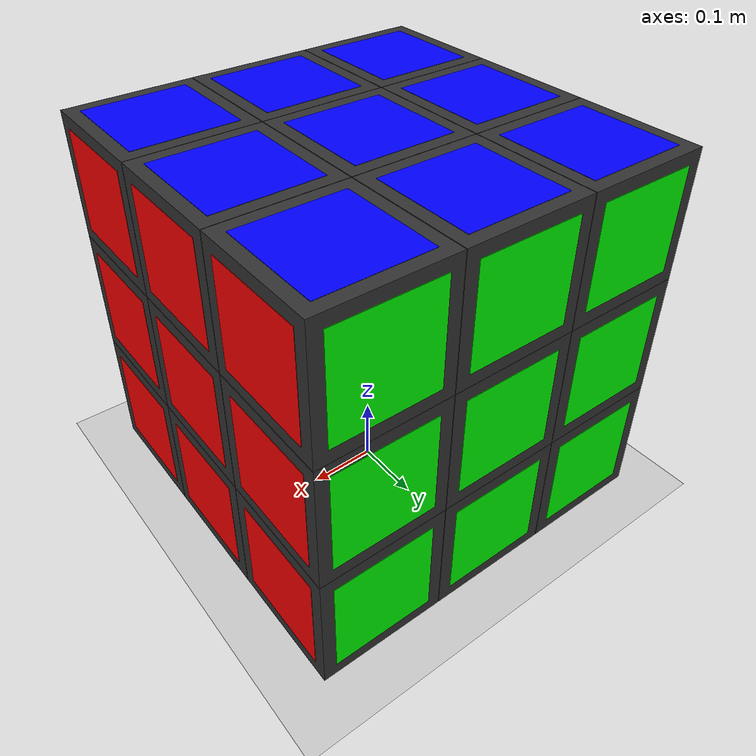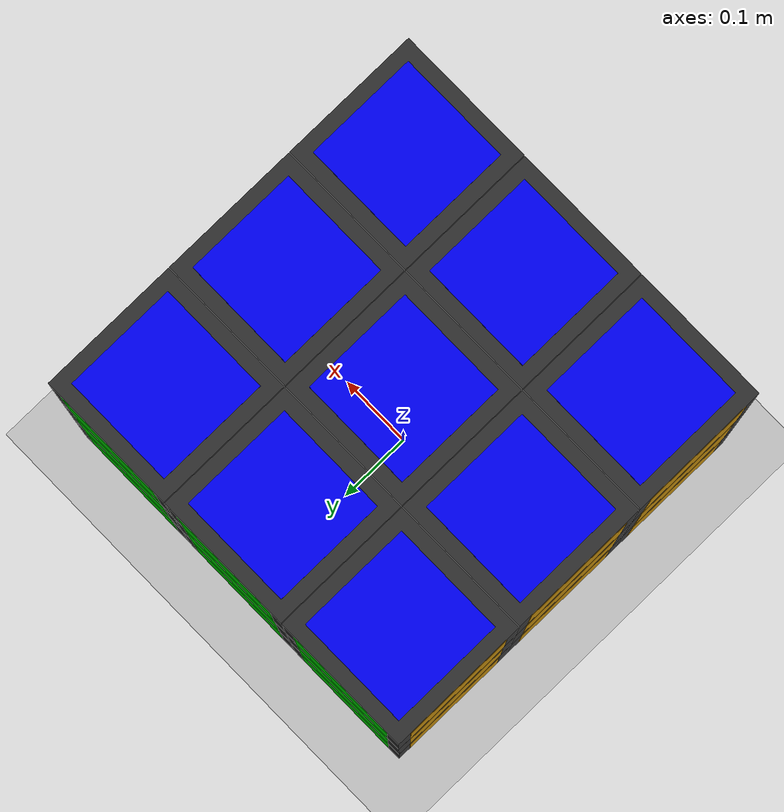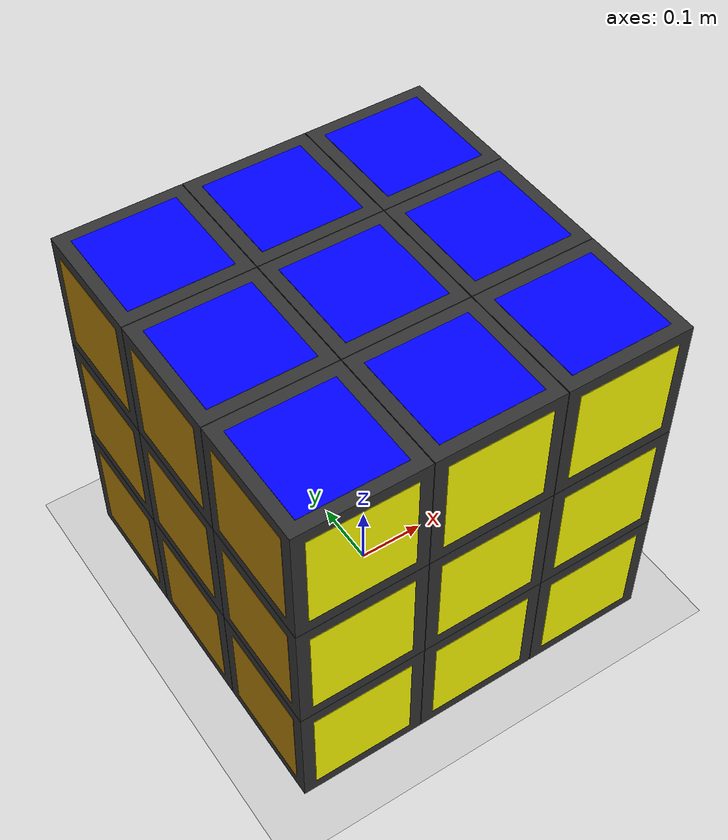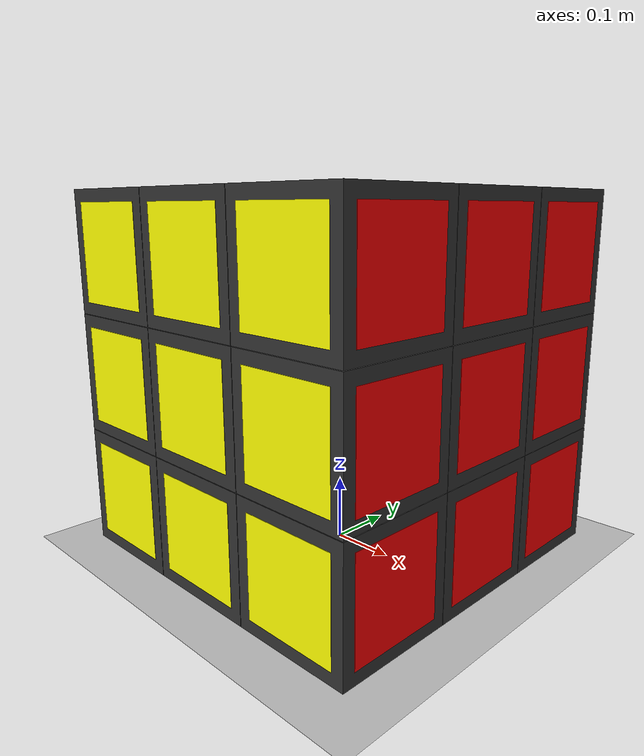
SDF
<?xml version="1.0" ?>
<sdf version="1.6">
  <world name="default">

    <gui>
      <plugin name="puzzle_gui_plugin" filename="libPuzzleGUIPlugin.so"/>
    </gui>

    <!-- A global light source -->
    <include>
      <uri>model://sun</uri>
    </include>

    <!-- A ground plane -->
    <include>
      <uri>model://ground_plane</uri>
    </include>

    <!-- The puzzle -->
    <include>
      <uri>model://puzzle_ball_joints</uri>
    </include>
  </world>
</sdf>

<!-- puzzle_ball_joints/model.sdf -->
<sdf version="1.5">
  <model name="puzzle_ball_joints">
    <pose>0 0 0.27949999999999997 0 0 0</pose>

    <link name="cubie_1_1_1">
      <pose>0.186 0.186 0.186 0 0 0</pose>
      <self_collide>1</self_collide>
      <inertial>
        <mass>7.439659375</mass>
        <inertia>
          <ixx>0.04243705701822916</ixx>
          <iyy>0.04243705701822916</iyy>
          <izz>0.04243705701822916</izz>
          <ixy>0</ixy>
          <ixz>0</ixz>
          <iyz>0</iyz>
        </inertia>
      </inertial>
      <collision name="collision">
        <geometry>
          <box>
            <size>0.185 0.185 0.185</size>
          </box>
        </geometry>
      </collision>
      <visual name="visual">
        <geometry>
          <box>
            <size>0.185 0.185 0.185</size>
          </box>
        </geometry>
        <material>
          <ambient>0.1 0.1 0.1 1</ambient>
          <diffuse>0.2 0.2 0.2 1</diffuse>
          <specular>0.1 0.1 0.1 1</specular>
          <emissive>0 0 0 1</emissive>
        </material>

        <meta>
          <layer>3</layer>
        </meta>
      </visual>

        <visual name='sticker_blue'>
          <pose>
            0.0
            0.0
            0.09275
            0 0 0
          </pose>
          <geometry>
            <box>
              <size>
                0.148
                0.148
                0.0005
              </size>
            </box>
          </geometry>
          <material>
            <ambient>0 0 1 1</ambient>
            <diffuse>0 0 1 1</diffuse>
          </material>
          <meta>
            <layer>3</layer>
          </meta>
        </visual>

        <visual name='sticker_red'>
          <pose>
            0.09275
            0.0
            0.0
            0 0 0
          </pose>
          <geometry>
            <box>
              <size>
                0.0005
                0.148
                0.148
              </size>
            </box>
          </geometry>
          <material>
            <ambient>1 0 0 1</ambient>
            <diffuse>1 0 0 1</diffuse>
          </material>
          <meta>
            <layer>3</layer>
          </meta>
        </visual>

        <visual name='sticker_green'>
          <pose>
            0.0
            0.09275
            0.0
            0 0 0
          </pose>
          <geometry>
            <box>
              <size>
                0.148
                0.0005
                0.148
              </size>
            </box>
          </geometry>
          <material>
            <ambient>0 1 0 1</ambient>
            <diffuse>0 1 0 1</diffuse>
          </material>
          <meta>
            <layer>3</layer>
          </meta>
        </visual>

    </link>

      <joint name="fake_joint_1_1_1" type="ball">
        <parent>cubie_1_1_1</parent>
        <child>cubie_0_0_0</child>
      </joint>

    <link name="cubie_1_1_-1">
      <pose>0.186 0.186 -0.186 0 0 0</pose>
      <self_collide>1</self_collide>
      <inertial>
        <mass>7.439659375</mass>
        <inertia>
          <ixx>0.04243705701822916</ixx>
          <iyy>0.04243705701822916</iyy>
          <izz>0.04243705701822916</izz>
          <ixy>0</ixy>
          <ixz>0</ixz>
          <iyz>0</iyz>
        </inertia>
      </inertial>
      <collision name="collision">
        <geometry>
          <box>
            <size>0.185 0.185 0.185</size>
          </box>
        </geometry>
      </collision>
      <visual name="visual">
        <geometry>
          <box>
            <size>0.185 0.185 0.185</size>
          </box>
        </geometry>
        <material>
          <ambient>0.1 0.1 0.1 1</ambient>
          <diffuse>0.2 0.2 0.2 1</diffuse>
          <specular>0.1 0.1 0.1 1</specular>
          <emissive>0 0 0 1</emissive>
        </material>

        <meta>
          <layer>3</layer>
        </meta>
      </visual>

        <visual name='sticker_white'>
          <pose>
            0.0
            0.0
            -0.09275
            0 0 0
          </pose>
          <geometry>
            <box>
              <size>
                0.148
                0.148
                0.0005
              </size>
            </box>
          </geometry>
          <material>
            <ambient>1 1 1 1</ambient>
            <diffuse>1 1 1 1</diffuse>
          </material>
          <meta>
            <layer>3</layer>
          </meta>
        </visual>

        <visual name='sticker_red'>
          <pose>
            0.09275
            0.0
            0.0
            0 0 0
          </pose>
          <geometry>
            <box>
              <size>
                0.0005
                0.148
                0.148
              </size>
            </box>
          </geometry>
          <material>
            <ambient>1 0 0 1</ambient>
            <diffuse>1 0 0 1</diffuse>
          </material>
          <meta>
            <layer>3</layer>
          </meta>
        </visual>

        <visual name='sticker_green'>
          <pose>
            0.0
            0.09275
            0.0
            0 0 0
          </pose>
          <geometry>
            <box>
              <size>
                0.148
                0.0005
                0.148
              </size>
            </box>
          </geometry>
          <material>
            <ambient>0 1 0 1</ambient>
            <diffuse>0 1 0 1</diffuse>
          </material>
          <meta>
            <layer>3</layer>
          </meta>
        </visual>

    </link>

      <joint name="fake_joint_1_1_-1" type="ball">
        <parent>cubie_1_1_-1</parent>
        <child>cubie_0_0_0</child>
      </joint>

    <link name="cubie_1_1_0">
      <pose>0.186 0.186 0.0 0 0 0</pose>
      <self_collide>1</self_collide>
      <inertial>
        <mass>7.439659375</mass>
        <inertia>
          <ixx>0.04243705701822916</ixx>
          <iyy>0.04243705701822916</iyy>
          <izz>0.04243705701822916</izz>
          <ixy>0</ixy>
          <ixz>0</ixz>
          <iyz>0</iyz>
        </inertia>
      </inertial>
      <collision name="collision">
        <geometry>
          <box>
            <size>0.185 0.185 0.185</size>
          </box>
        </geometry>
      </collision>
      <visual name="visual">
        <geometry>
          <box>
            <size>0.185 0.185 0.185</size>
          </box>
        </geometry>
        <material>
          <ambient>0.1 0.1 0.1 1</ambient>
          <diffuse>0.2 0.2 0.2 1</diffuse>
          <specular>0.1 0.1 0.1 1</specular>
          <emissive>0 0 0 1</emissive>
        </material>

        <meta>
          <layer>2</layer>
        </meta>
      </visual>

        <visual name='sticker_red'>
          <pose>
            0.09275
            0.0
            0.0
            0 0 0
          </pose>
          <geometry>
            <box>
              <size>
                0.0005
                0.148
                0.148
              </size>
            </box>
          </geometry>
          <material>
            <ambient>1 0 0 1</ambient>
            <diffuse>1 0 0 1</diffuse>
          </material>
          <meta>
            <layer>2</layer>
          </meta>
        </visual>

        <visual name='sticker_green'>
          <pose>
            0.0
            0.09275
            0.0
            0 0 0
          </pose>
          <geometry>
            <box>
              <size>
                0.148
                0.0005
                0.148
              </size>
            </box>
          </geometry>
          <material>
            <ambient>0 1 0 1</ambient>
            <diffuse>0 1 0 1</diffuse>
          </material>
          <meta>
            <layer>2</layer>
          </meta>
        </visual>

    </link>

      <joint name="fake_joint_1_1_0" type="ball">
        <parent>cubie_1_1_0</parent>
        <child>cubie_0_0_0</child>
      </joint>

    <link name="cubie_1_-1_1">
      <pose>0.186 -0.186 0.186 0 0 0</pose>
      <self_collide>1</self_collide>
      <inertial>
        <mass>7.439659375</mass>
        <inertia>
          <ixx>0.04243705701822916</ixx>
          <iyy>0.04243705701822916</iyy>
          <izz>0.04243705701822916</izz>
          <ixy>0</ixy>
          <ixz>0</ixz>
          <iyz>0</iyz>
        </inertia>
      </inertial>
      <collision name="collision">
        <geometry>
          <box>
            <size>0.185 0.185 0.185</size>
          </box>
        </geometry>
      </collision>
      <visual name="visual">
        <geometry>
          <box>
            <size>0.185 0.185 0.185</size>
          </box>
        </geometry>
        <material>
          <ambient>0.1 0.1 0.1 1</ambient>
          <diffuse>0.2 0.2 0.2 1</diffuse>
          <specular>0.1 0.1 0.1 1</specular>
          <emissive>0 0 0 1</emissive>
        </material>

        <meta>
          <layer>3</layer>
        </meta>
      </visual>

        <visual name='sticker_blue'>
          <pose>
            0.0
            0.0
            0.09275
            0 0 0
          </pose>
          <geometry>
            <box>
              <size>
                0.148
                0.148
                0.0005
              </size>
            </box>
          </geometry>
          <material>
            <ambient>0 0 1 1</ambient>
            <diffuse>0 0 1 1</diffuse>
          </material>
          <meta>
            <layer>3</layer>
          </meta>
        </visual>

        <visual name='sticker_red'>
          <pose>
            0.09275
            0.0
            0.0
            0 0 0
          </pose>
          <geometry>
            <box>
              <size>
                0.0005
                0.148
                0.148
              </size>
            </box>
          </geometry>
          <material>
            <ambient>1 0 0 1</ambient>
            <diffuse>1 0 0 1</diffuse>
          </material>
          <meta>
            <layer>3</layer>
          </meta>
        </visual>

        <visual name='sticker_yellow'>
          <pose>
            0.0
            -0.09275
            0.0
            0 0 0
          </pose>
          <geometry>
            <box>
              <size>
                0.148
                0.0005
                0.148
              </size>
            </box>
          </geometry>
          <material>
            <ambient>1 1 0 1</ambient>
            <diffuse>1 1 0 1</diffuse>
          </material>
          <meta>
            <layer>3</layer>
          </meta>
        </visual>

    </link>

      <joint name="fake_joint_1_-1_1" type="ball">
        <parent>cubie_1_-1_1</parent>
        <child>cubie_0_0_0</child>
      </joint>

    <link name="cubie_1_-1_-1">
      <pose>0.186 -0.186 -0.186 0 0 0</pose>
      <self_collide>1</self_collide>
      <inertial>
        <mass>7.439659375</mass>
        <inertia>
          <ixx>0.04243705701822916</ixx>
          <iyy>0.04243705701822916</iyy>
          <izz>0.04243705701822916</izz>
          <ixy>0</ixy>
          <ixz>0</ixz>
          <iyz>0</iyz>
        </inertia>
      </inertial>
      <collision name="collision">
        <geometry>
          <box>
            <size>0.185 0.185 0.185</size>
          </box>
        </geometry>
      </collision>
      <visual name="visual">
        <geometry>
          <box>
            <size>0.185 0.185 0.185</size>
          </box>
        </geometry>
        <material>
          <ambient>0.1 0.1 0.1 1</ambient>
          <diffuse>0.2 0.2 0.2 1</diffuse>
          <specular>0.1 0.1 0.1 1</specular>
          <emissive>0 0 0 1</emissive>
        </material>

        <meta>
          <layer>3</layer>
        </meta>
      </visual>

        <visual name='sticker_white'>
          <pose>
            0.0
            0.0
            -0.09275
            0 0 0
          </pose>
          <geometry>
            <box>
              <size>
                0.148
                0.148
                0.0005
              </size>
            </box>
          </geometry>
          <material>
            <ambient>1 1 1 1</ambient>
            <diffuse>1 1 1 1</diffuse>
          </material>
          <meta>
            <layer>3</layer>
          </meta>
        </visual>

        <visual name='sticker_red'>
          <pose>
            0.09275
            0.0
            0.0
            0 0 0
          </pose>
          <geometry>
            <box>
              <size>
                0.0005
                0.148
                0.148
              </size>
            </box>
          </geometry>
          <material>
            <ambient>1 0 0 1</ambient>
            <diffuse>1 0 0 1</diffuse>
          </material>
          <meta>
            <layer>3</layer>
          </meta>
        </visual>

        <visual name='sticker_yellow'>
          <pose>
            0.0
            -0.09275
            0.0
            0 0 0
          </pose>
          <geometry>
            <box>
              <size>
                0.148
                0.0005
                0.148
              </size>
            </box>
          </geometry>
          <material>
            <ambient>1 1 0 1</ambient>
            <diffuse>1 1 0 1</diffuse>
          </material>
          <meta>
            <layer>3</layer>
          </meta>
        </visual>

    </link>

      <joint name="fake_joint_1_-1_-1" type="ball">
        <parent>cubie_1_-1_-1</parent>
        <child>cubie_0_0_0</child>
      </joint>

    <link name="cubie_1_-1_0">
      <pose>0.186 -0.186 0.0 0 0 0</pose>
      <self_collide>1</self_collide>
      <inertial>
        <mass>7.439659375</mass>
        <inertia>
          <ixx>0.04243705701822916</ixx>
          <iyy>0.04243705701822916</iyy>
          <izz>0.04243705701822916</izz>
          <ixy>0</ixy>
          <ixz>0</ixz>
          <iyz>0</iyz>
        </inertia>
      </inertial>
      <collision name="collision">
        <geometry>
          <box>
            <size>0.185 0.185 0.185</size>
          </box>
        </geometry>
      </collision>
      <visual name="visual">
        <geometry>
          <box>
            <size>0.185 0.185 0.185</size>
          </box>
        </geometry>
        <material>
          <ambient>0.1 0.1 0.1 1</ambient>
          <diffuse>0.2 0.2 0.2 1</diffuse>
          <specular>0.1 0.1 0.1 1</specular>
          <emissive>0 0 0 1</emissive>
        </material>

        <meta>
          <layer>2</layer>
        </meta>
      </visual>

        <visual name='sticker_red'>
          <pose>
            0.09275
            0.0
            0.0
            0 0 0
          </pose>
          <geometry>
            <box>
              <size>
                0.0005
                0.148
                0.148
              </size>
            </box>
          </geometry>
          <material>
            <ambient>1 0 0 1</ambient>
            <diffuse>1 0 0 1</diffuse>
          </material>
          <meta>
            <layer>2</layer>
          </meta>
        </visual>

        <visual name='sticker_yellow'>
          <pose>
            0.0
            -0.09275
            0.0
            0 0 0
          </pose>
          <geometry>
            <box>
              <size>
                0.148
                0.0005
                0.148
              </size>
            </box>
          </geometry>
          <material>
            <ambient>1 1 0 1</ambient>
            <diffuse>1 1 0 1</diffuse>
          </material>
          <meta>
            <layer>2</layer>
          </meta>
        </visual>

    </link>

      <joint name="fake_joint_1_-1_0" type="ball">
        <parent>cubie_1_-1_0</parent>
        <child>cubie_0_0_0</child>
      </joint>

    <link name="cubie_1_0_1">
      <pose>0.186 0.0 0.186 0 0 0</pose>
      <self_collide>1</self_collide>
      <inertial>
        <mass>7.439659375</mass>
        <inertia>
          <ixx>0.04243705701822916</ixx>
          <iyy>0.04243705701822916</iyy>
          <izz>0.04243705701822916</izz>
          <ixy>0</ixy>
          <ixz>0</ixz>
          <iyz>0</iyz>
        </inertia>
      </inertial>
      <collision name="collision">
        <geometry>
          <box>
            <size>0.185 0.185 0.185</size>
          </box>
        </geometry>
      </collision>
      <visual name="visual">
        <geometry>
          <box>
            <size>0.185 0.185 0.185</size>
          </box>
        </geometry>
        <material>
          <ambient>0.1 0.1 0.1 1</ambient>
          <diffuse>0.2 0.2 0.2 1</diffuse>
          <specular>0.1 0.1 0.1 1</specular>
          <emissive>0 0 0 1</emissive>
        </material>

        <meta>
          <layer>2</layer>
        </meta>
      </visual>

        <visual name='sticker_blue'>
          <pose>
            0.0
            0.0
            0.09275
            0 0 0
          </pose>
          <geometry>
            <box>
              <size>
                0.148
                0.148
                0.0005
              </size>
            </box>
          </geometry>
          <material>
            <ambient>0 0 1 1</ambient>
            <diffuse>0 0 1 1</diffuse>
          </material>
          <meta>
            <layer>2</layer>
          </meta>
        </visual>

        <visual name='sticker_red'>
          <pose>
            0.09275
            0.0
            0.0
            0 0 0
          </pose>
          <geometry>
            <box>
              <size>
                0.0005
                0.148
                0.148
              </size>
            </box>
          </geometry>
          <material>
            <ambient>1 0 0 1</ambient>
            <diffuse>1 0 0 1</diffuse>
          </material>
          <meta>
            <layer>2</layer>
          </meta>
        </visual>

    </link>

      <joint name="fake_joint_1_0_1" type="ball">
        <parent>cubie_1_0_1</parent>
        <child>cubie_0_0_0</child>
      </joint>

    <link name="cubie_1_0_-1">
      <pose>0.186 0.0 -0.186 0 0 0</pose>
      <self_collide>1</self_collide>
      <inertial>
        <mass>7.439659375</mass>
        <inertia>
          <ixx>0.04243705701822916</ixx>
          <iyy>0.04243705701822916</iyy>
          <izz>0.04243705701822916</izz>
          <ixy>0</ixy>
          <ixz>0</ixz>
          <iyz>0</iyz>
        </inertia>
      </inertial>
      <collision name="collision">
        <geometry>
          <box>
            <size>0.185 0.185 0.185</size>
          </box>
        </geometry>
      </collision>
      <visual name="visual">
        <geometry>
          <box>
            <size>0.185 0.185 0.185</size>
          </box>
        </geometry>
        <material>
          <ambient>0.1 0.1 0.1 1</ambient>
          <diffuse>0.2 0.2 0.2 1</diffuse>
          <specular>0.1 0.1 0.1 1</specular>
          <emissive>0 0 0 1</emissive>
        </material>

        <meta>
          <layer>2</layer>
        </meta>
      </visual>

        <visual name='sticker_white'>
          <pose>
            0.0
            0.0
            -0.09275
            0 0 0
          </pose>
          <geometry>
            <box>
              <size>
                0.148
                0.148
                0.0005
              </size>
            </box>
          </geometry>
          <material>
            <ambient>1 1 1 1</ambient>
            <diffuse>1 1 1 1</diffuse>
          </material>
          <meta>
            <layer>2</layer>
          </meta>
        </visual>

        <visual name='sticker_red'>
          <pose>
            0.09275
            0.0
            0.0
            0 0 0
          </pose>
          <geometry>
            <box>
              <size>
                0.0005
                0.148
                0.148
              </size>
            </box>
          </geometry>
          <material>
            <ambient>1 0 0 1</ambient>
            <diffuse>1 0 0 1</diffuse>
          </material>
          <meta>
            <layer>2</layer>
          </meta>
        </visual>

    </link>

      <joint name="fake_joint_1_0_-1" type="ball">
        <parent>cubie_1_0_-1</parent>
        <child>cubie_0_0_0</child>
      </joint>

    <link name="cubie_1_0_0">
      <pose>0.186 0.0 0.0 0 0 0</pose>
      <self_collide>1</self_collide>
      <inertial>
        <mass>7.439659375</mass>
        <inertia>
          <ixx>0.04243705701822916</ixx>
          <iyy>0.04243705701822916</iyy>
          <izz>0.04243705701822916</izz>
          <ixy>0</ixy>
          <ixz>0</ixz>
          <iyz>0</iyz>
        </inertia>
      </inertial>
      <collision name="collision">
        <geometry>
          <box>
            <size>0.185 0.185 0.185</size>
          </box>
        </geometry>
      </collision>
      <visual name="visual">
        <geometry>
          <box>
            <size>0.185 0.185 0.185</size>
          </box>
        </geometry>
        <material>
          <ambient>0.1 0.1 0.1 1</ambient>
          <diffuse>0.2 0.2 0.2 1</diffuse>
          <specular>0.1 0.1 0.1 1</specular>
          <emissive>0 0 0 1</emissive>
        </material>

        <meta>
          <layer>1</layer>
        </meta>
      </visual>

        <visual name='sticker_red'>
          <pose>
            0.09275
            0.0
            0.0
            0 0 0
          </pose>
          <geometry>
            <box>
              <size>
                0.0005
                0.148
                0.148
              </size>
            </box>
          </geometry>
          <material>
            <ambient>1 0 0 1</ambient>
            <diffuse>1 0 0 1</diffuse>
          </material>
          <meta>
            <layer>1</layer>
          </meta>
        </visual>

    </link>

      <joint name="center_joint_1_0_0" type="revolute">
        <parent>cubie_0_0_0</parent>
        <child>cubie_1_0_0</child>
        <axis>
          <xyz>1 0 0</xyz>
        </axis>
      </joint>

    <link name="cubie_-1_1_1">
      <pose>-0.186 0.186 0.186 0 0 0</pose>
      <self_collide>1</self_collide>
      <inertial>
        <mass>7.439659375</mass>
        <inertia>
          <ixx>0.04243705701822916</ixx>
          <iyy>0.04243705701822916</iyy>
          <izz>0.04243705701822916</izz>
          <ixy>0</ixy>
          <ixz>0</ixz>
          <iyz>0</iyz>
        </inertia>
      </inertial>
      <collision name="collision">
        <geometry>
          <box>
            <size>0.185 0.185 0.185</size>
          </box>
        </geometry>
      </collision>
      <visual name="visual">
        <geometry>
          <box>
            <size>0.185 0.185 0.185</size>
          </box>
        </geometry>
        <material>
          <ambient>0.1 0.1 0.1 1</ambient>
          <diffuse>0.2 0.2 0.2 1</diffuse>
          <specular>0.1 0.1 0.1 1</specular>
          <emissive>0 0 0 1</emissive>
        </material>

        <meta>
          <layer>3</layer>
        </meta>
      </visual>

        <visual name='sticker_blue'>
          <pose>
            0.0
            0.0
            0.09275
            0 0 0
          </pose>
          <geometry>
            <box>
              <size>
                0.148
                0.148
                0.0005
              </size>
            </box>
          </geometry>
          <material>
            <ambient>0 0 1 1</ambient>
            <diffuse>0 0 1 1</diffuse>
          </material>
          <meta>
            <layer>3</layer>
          </meta>
        </visual>

        <visual name='sticker_orange'>
          <pose>
            -0.09275
            0.0
            0.0
            0 0 0
          </pose>
          <geometry>
            <box>
              <size>
                0.0005
                0.148
                0.148
              </size>
            </box>
          </geometry>
          <material>
            <ambient>0.7 0.5 0.03 1</ambient>
            <diffuse>0.7 0.5 0.03 1</diffuse>
          </material>
          <meta>
            <layer>3</layer>
          </meta>
        </visual>

        <visual name='sticker_green'>
          <pose>
            0.0
            0.09275
            0.0
            0 0 0
          </pose>
          <geometry>
            <box>
              <size>
                0.148
                0.0005
                0.148
              </size>
            </box>
          </geometry>
          <material>
            <ambient>0 1 0 1</ambient>
            <diffuse>0 1 0 1</diffuse>
          </material>
          <meta>
            <layer>3</layer>
          </meta>
        </visual>

    </link>

      <joint name="fake_joint_-1_1_1" type="ball">
        <parent>cubie_-1_1_1</parent>
        <child>cubie_0_0_0</child>
      </joint>

    <link name="cubie_-1_1_-1">
      <pose>-0.186 0.186 -0.186 0 0 0</pose>
      <self_collide>1</self_collide>
      <inertial>
        <mass>7.439659375</mass>
        <inertia>
          <ixx>0.04243705701822916</ixx>
          <iyy>0.04243705701822916</iyy>
          <izz>0.04243705701822916</izz>
          <ixy>0</ixy>
          <ixz>0</ixz>
          <iyz>0</iyz>
        </inertia>
      </inertial>
      <collision name="collision">
        <geometry>
          <box>
            <size>0.185 0.185 0.185</size>
          </box>
        </geometry>
      </collision>
      <visual name="visual">
        <geometry>
          <box>
            <size>0.185 0.185 0.185</size>
          </box>
        </geometry>
        <material>
          <ambient>0.1 0.1 0.1 1</ambient>
          <diffuse>0.2 0.2 0.2 1</diffuse>
          <specular>0.1 0.1 0.1 1</specular>
          <emissive>0 0 0 1</emissive>
        </material>

        <meta>
          <layer>3</layer>
        </meta>
      </visual>

        <visual name='sticker_white'>
          <pose>
            0.0
            0.0
            -0.09275
            0 0 0
          </pose>
          <geometry>
            <box>
              <size>
                0.148
                0.148
                0.0005
              </size>
            </box>
          </geometry>
          <material>
            <ambient>1 1 1 1</ambient>
            <diffuse>1 1 1 1</diffuse>
          </material>
          <meta>
            <layer>3</layer>
          </meta>
        </visual>

        <visual name='sticker_orange'>
          <pose>
            -0.09275
            0.0
            0.0
            0 0 0
          </pose>
          <geometry>
            <box>
              <size>
                0.0005
                0.148
                0.148
              </size>
            </box>
          </geometry>
          <material>
            <ambient>0.7 0.5 0.03 1</ambient>
            <diffuse>0.7 0.5 0.03 1</diffuse>
          </material>
          <meta>
            <layer>3</layer>
          </meta>
        </visual>

        <visual name='sticker_green'>
          <pose>
            0.0
            0.09275
            0.0
            0 0 0
          </pose>
          <geometry>
            <box>
              <size>
                0.148
                0.0005
                0.148
              </size>
            </box>
          </geometry>
          <material>
            <ambient>0 1 0 1</ambient>
            <diffuse>0 1 0 1</diffuse>
          </material>
          <meta>
            <layer>3</layer>
          </meta>
        </visual>

    </link>

      <joint name="fake_joint_-1_1_-1" type="ball">
        <parent>cubie_-1_1_-1</parent>
        <child>cubie_0_0_0</child>
      </joint>

    <link name="cubie_-1_1_0">
      <pose>-0.186 0.186 0.0 0 0 0</pose>
      <self_collide>1</self_collide>
      <inertial>
        <mass>7.439659375</mass>
        <inertia>
          <ixx>0.04243705701822916</ixx>
          <iyy>0.04243705701822916</iyy>
          <izz>0.04243705701822916</izz>
          <ixy>0</ixy>
          <ixz>0</ixz>
          <iyz>0</iyz>
        </inertia>
      </inertial>
      <collision name="collision">
        <geometry>
          <box>
            <size>0.185 0.185 0.185</size>
          </box>
        </geometry>
      </collision>
      <visual name="visual">
        <geometry>
          <box>
            <size>0.185 0.185 0.185</size>
          </box>
        </geometry>
        <material>
          <ambient>0.1 0.1 0.1 1</ambient>
          <diffuse>0.2 0.2 0.2 1</diffuse>
          <specular>0.1 0.1 0.1 1</specular>
          <emissive>0 0 0 1</emissive>
        </material>

        <meta>
          <layer>2</layer>
        </meta>
      </visual>

        <visual name='sticker_orange'>
          <pose>
            -0.09275
            0.0
            0.0
            0 0 0
          </pose>
          <geometry>
            <box>
              <size>
                0.0005
                0.148
                0.148
              </size>
            </box>
          </geometry>
          <material>
            <ambient>0.7 0.5 0.03 1</ambient>
            <diffuse>0.7 0.5 0.03 1</diffuse>
          </material>
          <meta>
            <layer>2</layer>
          </meta>
        </visual>

        <visual name='sticker_green'>
          <pose>
            0.0
            0.09275
            0.0
            0 0 0
          </pose>
          <geometry>
            <box>
              <size>
                0.148
                0.0005
                0.148
              </size>
            </box>
          </geometry>
          <material>
            <ambient>0 1 0 1</ambient>
            <diffuse>0 1 0 1</diffuse>
          </material>
          <meta>
            <layer>2</layer>
          </meta>
        </visual>

    </link>

      <joint name="fake_joint_-1_1_0" type="ball">
        <parent>cubie_-1_1_0</parent>
        <child>cubie_0_0_0</child>
      </joint>

    <link name="cubie_-1_-1_1">
      <pose>-0.186 -0.186 0.186 0 0 0</pose>
      <self_collide>1</self_collide>
      <inertial>
        <mass>7.439659375</mass>
        <inertia>
          <ixx>0.04243705701822916</ixx>
          <iyy>0.04243705701822916</iyy>
          <izz>0.04243705701822916</izz>
          <ixy>0</ixy>
          <ixz>0</ixz>
          <iyz>0</iyz>
        </inertia>
      </inertial>
      <collision name="collision">
        <geometry>
          <box>
            <size>0.185 0.185 0.185</size>
          </box>
        </geometry>
      </collision>
      <visual name="visual">
        <geometry>
          <box>
            <size>0.185 0.185 0.185</size>
          </box>
        </geometry>
        <material>
          <ambient>0.1 0.1 0.1 1</ambient>
          <diffuse>0.2 0.2 0.2 1</diffuse>
          <specular>0.1 0.1 0.1 1</specular>
          <emissive>0 0 0 1</emissive>
        </material>

        <meta>
          <layer>3</layer>
        </meta>
      </visual>

        <visual name='sticker_blue'>
          <pose>
            0.0
            0.0
            0.09275
            0 0 0
          </pose>
          <geometry>
            <box>
              <size>
                0.148
                0.148
                0.0005
              </size>
            </box>
          </geometry>
          <material>
            <ambient>0 0 1 1</ambient>
            <diffuse>0 0 1 1</diffuse>
          </material>
          <meta>
            <layer>3</layer>
          </meta>
        </visual>

        <visual name='sticker_orange'>
          <pose>
            -0.09275
            0.0
            0.0
            0 0 0
          </pose>
          <geometry>
            <box>
              <size>
                0.0005
                0.148
                0.148
              </size>
            </box>
          </geometry>
          <material>
            <ambient>0.7 0.5 0.03 1</ambient>
            <diffuse>0.7 0.5 0.03 1</diffuse>
          </material>
          <meta>
            <layer>3</layer>
          </meta>
        </visual>

        <visual name='sticker_yellow'>
          <pose>
            0.0
            -0.09275
            0.0
            0 0 0
          </pose>
          <geometry>
            <box>
              <size>
                0.148
                0.0005
                0.148
              </size>
            </box>
          </geometry>
          <material>
            <ambient>1 1 0 1</ambient>
            <diffuse>1 1 0 1</diffuse>
          </material>
          <meta>
            <layer>3</layer>
          </meta>
        </visual>

    </link>

      <joint name="fake_joint_-1_-1_1" type="ball">
        <parent>cubie_-1_-1_1</parent>
        <child>cubie_0_0_0</child>
      </joint>

    <link name="cubie_-1_-1_-1">
      <pose>-0.186 -0.186 -0.186 0 0 0</pose>
      <self_collide>1</self_collide>
      <inertial>
        <mass>7.439659375</mass>
        <inertia>
          <ixx>0.04243705701822916</ixx>
          <iyy>0.04243705701822916</iyy>
          <izz>0.04243705701822916</izz>
          <ixy>0</ixy>
          <ixz>0</ixz>
          <iyz>0</iyz>
        </inertia>
      </inertial>
      <collision name="collision">
        <geometry>
          <box>
            <size>0.185 0.185 0.185</size>
          </box>
        </geometry>
      </collision>
      <visual name="visual">
        <geometry>
          <box>
            <size>0.185 0.185 0.185</size>
          </box>
        </geometry>
        <material>
          <ambient>0.1 0.1 0.1 1</ambient>
          <diffuse>0.2 0.2 0.2 1</diffuse>
          <specular>0.1 0.1 0.1 1</specular>
          <emissive>0 0 0 1</emissive>
        </material>

        <meta>
          <layer>3</layer>
        </meta>
      </visual>

        <visual name='sticker_white'>
          <pose>
            0.0
            0.0
            -0.09275
            0 0 0
          </pose>
          <geometry>
            <box>
              <size>
                0.148
                0.148
                0.0005
              </size>
            </box>
          </geometry>
          <material>
            <ambient>1 1 1 1</ambient>
            <diffuse>1 1 1 1</diffuse>
          </material>
          <meta>
            <layer>3</layer>
          </meta>
        </visual>

        <visual name='sticker_orange'>
          <pose>
            -0.09275
            0.0
            0.0
            0 0 0
          </pose>
          <geometry>
            <box>
              <size>
                0.0005
                0.148
                0.148
              </size>
            </box>
          </geometry>
          <material>
            <ambient>0.7 0.5 0.03 1</ambient>
            <diffuse>0.7 0.5 0.03 1</diffuse>
          </material>
          <meta>
            <layer>3</layer>
          </meta>
        </visual>

        <visual name='sticker_yellow'>
          <pose>
            0.0
            -0.09275
            0.0
            0 0 0
          </pose>
          <geometry>
            <box>
              <size>
                0.148
                0.0005
                0.148
              </size>
            </box>
          </geometry>
          <material>
            <ambient>1 1 0 1</ambient>
            <diffuse>1 1 0 1</diffuse>
          </material>
          <meta>
            <layer>3</layer>
          </meta>
        </visual>

    </link>

      <joint name="fake_joint_-1_-1_-1" type="ball">
        <parent>cubie_-1_-1_-1</parent>
        <child>cubie_0_0_0</child>
      </joint>

    <link name="cubie_-1_-1_0">
      <pose>-0.186 -0.186 0.0 0 0 0</pose>
      <self_collide>1</self_collide>
      <inertial>
        <mass>7.439659375</mass>
        <inertia>
          <ixx>0.04243705701822916</ixx>
          <iyy>0.04243705701822916</iyy>
          <izz>0.04243705701822916</izz>
          <ixy>0</ixy>
          <ixz>0</ixz>
          <iyz>0</iyz>
        </inertia>
      </inertial>
      <collision name="collision">
        <geometry>
          <box>
            <size>0.185 0.185 0.185</size>
          </box>
        </geometry>
      </collision>
      <visual name="visual">
        <geometry>
          <box>
            <size>0.185 0.185 0.185</size>
          </box>
        </geometry>
        <material>
          <ambient>0.1 0.1 0.1 1</ambient>
          <diffuse>0.2 0.2 0.2 1</diffuse>
          <specular>0.1 0.1 0.1 1</specular>
          <emissive>0 0 0 1</emissive>
        </material>

        <meta>
          <layer>2</layer>
        </meta>
      </visual>

        <visual name='sticker_orange'>
          <pose>
            -0.09275
            0.0
            0.0
            0 0 0
          </pose>
          <geometry>
            <box>
              <size>
                0.0005
                0.148
                0.148
              </size>
            </box>
          </geometry>
          <material>
            <ambient>0.7 0.5 0.03 1</ambient>
            <diffuse>0.7 0.5 0.03 1</diffuse>
          </material>
          <meta>
            <layer>2</layer>
          </meta>
        </visual>

        <visual name='sticker_yellow'>
          <pose>
            0.0
            -0.09275
            0.0
            0 0 0
          </pose>
          <geometry>
            <box>
              <size>
                0.148
                0.0005
                0.148
              </size>
            </box>
          </geometry>
          <material>
            <ambient>1 1 0 1</ambient>
            <diffuse>1 1 0 1</diffuse>
          </material>
          <meta>
            <layer>2</layer>
          </meta>
        </visual>

    </link>

      <joint name="fake_joint_-1_-1_0" type="ball">
        <parent>cubie_-1_-1_0</parent>
        <child>cubie_0_0_0</child>
      </joint>

    <link name="cubie_-1_0_1">
      <pose>-0.186 0.0 0.186 0 0 0</pose>
      <self_collide>1</self_collide>
      <inertial>
        <mass>7.439659375</mass>
        <inertia>
          <ixx>0.04243705701822916</ixx>
          <iyy>0.04243705701822916</iyy>
          <izz>0.04243705701822916</izz>
          <ixy>0</ixy>
          <ixz>0</ixz>
          <iyz>0</iyz>
        </inertia>
      </inertial>
      <collision name="collision">
        <geometry>
          <box>
            <size>0.185 0.185 0.185</size>
          </box>
        </geometry>
      </collision>
      <visual name="visual">
        <geometry>
          <box>
            <size>0.185 0.185 0.185</size>
          </box>
        </geometry>
        <material>
          <ambient>0.1 0.1 0.1 1</ambient>
          <diffuse>0.2 0.2 0.2 1</diffuse>
          <specular>0.1 0.1 0.1 1</specular>
          <emissive>0 0 0 1</emissive>
        </material>

        <meta>
          <layer>2</layer>
        </meta>
      </visual>

        <visual name='sticker_blue'>
          <pose>
            0.0
            0.0
            0.09275
            0 0 0
          </pose>
          <geometry>
            <box>
              <size>
                0.148
                0.148
                0.0005
              </size>
            </box>
          </geometry>
          <material>
            <ambient>0 0 1 1</ambient>
            <diffuse>0 0 1 1</diffuse>
          </material>
          <meta>
            <layer>2</layer>
          </meta>
        </visual>

        <visual name='sticker_orange'>
          <pose>
            -0.09275
            0.0
            0.0
            0 0 0
          </pose>
          <geometry>
            <box>
              <size>
                0.0005
                0.148
                0.148
              </size>
            </box>
          </geometry>
          <material>
            <ambient>0.7 0.5 0.03 1</ambient>
            <diffuse>0.7 0.5 0.03 1</diffuse>
          </material>
          <meta>
            <layer>2</layer>
          </meta>
        </visual>

    </link>

      <joint name="fake_joint_-1_0_1" type="ball">
        <parent>cubie_-1_0_1</parent>
        <child>cubie_0_0_0</child>
      </joint>

    <link name="cubie_-1_0_-1">
      <pose>-0.186 0.0 -0.186 0 0 0</pose>
      <self_collide>1</self_collide>
      <inertial>
        <mass>7.439659375</mass>
        <inertia>
          <ixx>0.04243705701822916</ixx>
          <iyy>0.04243705701822916</iyy>
          <izz>0.04243705701822916</izz>
          <ixy>0</ixy>
          <ixz>0</ixz>
          <iyz>0</iyz>
        </inertia>
      </inertial>
      <collision name="collision">
        <geometry>
          <box>
            <size>0.185 0.185 0.185</size>
          </box>
        </geometry>
      </collision>
      <visual name="visual">
        <geometry>
          <box>
            <size>0.185 0.185 0.185</size>
          </box>
        </geometry>
        <material>
          <ambient>0.1 0.1 0.1 1</ambient>
          <diffuse>0.2 0.2 0.2 1</diffuse>
          <specular>0.1 0.1 0.1 1</specular>
          <emissive>0 0 0 1</emissive>
        </material>

        <meta>
          <layer>2</layer>
        </meta>
      </visual>

        <visual name='sticker_white'>
          <pose>
            0.0
            0.0
            -0.09275
            0 0 0
          </pose>
          <geometry>
            <box>
              <size>
                0.148
                0.148
                0.0005
              </size>
            </box>
          </geometry>
          <material>
            <ambient>1 1 1 1</ambient>
            <diffuse>1 1 1 1</diffuse>
          </material>
          <meta>
            <layer>2</layer>
          </meta>
        </visual>

        <visual name='sticker_orange'>
          <pose>
            -0.09275
            0.0
            0.0
            0 0 0
          </pose>
          <geometry>
            <box>
              <size>
                0.0005
                0.148
                0.148
              </size>
            </box>
          </geometry>
          <material>
            <ambient>0.7 0.5 0.03 1</ambient>
            <diffuse>0.7 0.5 0.03 1</diffuse>
          </material>
          <meta>
            <layer>2</layer>
          </meta>
        </visual>

    </link>

      <joint name="fake_joint_-1_0_-1" type="ball">
        <parent>cubie_-1_0_-1</parent>
        <child>cubie_0_0_0</child>
      </joint>

    <link name="cubie_-1_0_0">
      <pose>-0.186 0.0 0.0 0 0 0</pose>
      <self_collide>1</self_collide>
      <inertial>
        <mass>7.439659375</mass>
        <inertia>
          <ixx>0.04243705701822916</ixx>
          <iyy>0.04243705701822916</iyy>
          <izz>0.04243705701822916</izz>
          <ixy>0</ixy>
          <ixz>0</ixz>
          <iyz>0</iyz>
        </inertia>
      </inertial>
      <collision name="collision">
        <geometry>
          <box>
            <size>0.185 0.185 0.185</size>
          </box>
        </geometry>
      </collision>
      <visual name="visual">
        <geometry>
          <box>
            <size>0.185 0.185 0.185</size>
          </box>
        </geometry>
        <material>
          <ambient>0.1 0.1 0.1 1</ambient>
          <diffuse>0.2 0.2 0.2 1</diffuse>
          <specular>0.1 0.1 0.1 1</specular>
          <emissive>0 0 0 1</emissive>
        </material>

        <meta>
          <layer>1</layer>
        </meta>
      </visual>

        <visual name='sticker_orange'>
          <pose>
            -0.09275
            0.0
            0.0
            0 0 0
          </pose>
          <geometry>
            <box>
              <size>
                0.0005
                0.148
                0.148
              </size>
            </box>
          </geometry>
          <material>
            <ambient>0.7 0.5 0.03 1</ambient>
            <diffuse>0.7 0.5 0.03 1</diffuse>
          </material>
          <meta>
            <layer>1</layer>
          </meta>
        </visual>

    </link>

      <joint name="center_joint_-1_0_0" type="revolute">
        <parent>cubie_0_0_0</parent>
        <child>cubie_-1_0_0</child>
        <axis>
          <xyz>-1 0 0</xyz>
        </axis>
      </joint>

    <link name="cubie_0_1_1">
      <pose>0.0 0.186 0.186 0 0 0</pose>
      <self_collide>1</self_collide>
      <inertial>
        <mass>7.439659375</mass>
        <inertia>
          <ixx>0.04243705701822916</ixx>
          <iyy>0.04243705701822916</iyy>
          <izz>0.04243705701822916</izz>
          <ixy>0</ixy>
          <ixz>0</ixz>
          <iyz>0</iyz>
        </inertia>
      </inertial>
      <collision name="collision">
        <geometry>
          <box>
            <size>0.185 0.185 0.185</size>
          </box>
        </geometry>
      </collision>
      <visual name="visual">
        <geometry>
          <box>
            <size>0.185 0.185 0.185</size>
          </box>
        </geometry>
        <material>
          <ambient>0.1 0.1 0.1 1</ambient>
          <diffuse>0.2 0.2 0.2 1</diffuse>
          <specular>0.1 0.1 0.1 1</specular>
          <emissive>0 0 0 1</emissive>
        </material>

        <meta>
          <layer>2</layer>
        </meta>
      </visual>

        <visual name='sticker_blue'>
          <pose>
            0.0
            0.0
            0.09275
            0 0 0
          </pose>
          <geometry>
            <box>
              <size>
                0.148
                0.148
                0.0005
              </size>
            </box>
          </geometry>
          <material>
            <ambient>0 0 1 1</ambient>
            <diffuse>0 0 1 1</diffuse>
          </material>
          <meta>
            <layer>2</layer>
          </meta>
        </visual>

        <visual name='sticker_green'>
          <pose>
            0.0
            0.09275
            0.0
            0 0 0
          </pose>
          <geometry>
            <box>
              <size>
                0.148
                0.0005
                0.148
              </size>
            </box>
          </geometry>
          <material>
            <ambient>0 1 0 1</ambient>
            <diffuse>0 1 0 1</diffuse>
          </material>
          <meta>
            <layer>2</layer>
          </meta>
        </visual>

    </link>

      <joint name="fake_joint_0_1_1" type="ball">
        <parent>cubie_0_1_1</parent>
        <child>cubie_0_0_0</child>
      </joint>

    <link name="cubie_0_1_-1">
      <pose>0.0 0.186 -0.186 0 0 0</pose>
      <self_collide>1</self_collide>
      <inertial>
        <mass>7.439659375</mass>
        <inertia>
          <ixx>0.04243705701822916</ixx>
          <iyy>0.04243705701822916</iyy>
          <izz>0.04243705701822916</izz>
          <ixy>0</ixy>
          <ixz>0</ixz>
          <iyz>0</iyz>
        </inertia>
      </inertial>
      <collision name="collision">
        <geometry>
          <box>
            <size>0.185 0.185 0.185</size>
          </box>
        </geometry>
      </collision>
      <visual name="visual">
        <geometry>
          <box>
            <size>0.185 0.185 0.185</size>
          </box>
        </geometry>
        <material>
          <ambient>0.1 0.1 0.1 1</ambient>
          <diffuse>0.2 0.2 0.2 1</diffuse>
          <specular>0.1 0.1 0.1 1</specular>
          <emissive>0 0 0 1</emissive>
        </material>

        <meta>
          <layer>2</layer>
        </meta>
      </visual>

        <visual name='sticker_white'>
          <pose>
            0.0
            0.0
            -0.09275
            0 0 0
          </pose>
          <geometry>
            <box>
              <size>
                0.148
                0.148
                0.0005
              </size>
            </box>
          </geometry>
          <material>
            <ambient>1 1 1 1</ambient>
            <diffuse>1 1 1 1</diffuse>
          </material>
          <meta>
            <layer>2</layer>
          </meta>
        </visual>

        <visual name='sticker_green'>
          <pose>
            0.0
            0.09275
            0.0
            0 0 0
          </pose>
          <geometry>
            <box>
              <size>
                0.148
                0.0005
                0.148
              </size>
            </box>
          </geometry>
          <material>
            <ambient>0 1 0 1</ambient>
            <diffuse>0 1 0 1</diffuse>
          </material>
          <meta>
            <layer>2</layer>
          </meta>
        </visual>

    </link>

      <joint name="fake_joint_0_1_-1" type="ball">
        <parent>cubie_0_1_-1</parent>
        <child>cubie_0_0_0</child>
      </joint>

    <link name="cubie_0_1_0">
      <pose>0.0 0.186 0.0 0 0 0</pose>
      <self_collide>1</self_collide>
      <inertial>
        <mass>7.439659375</mass>
        <inertia>
          <ixx>0.04243705701822916</ixx>
          <iyy>0.04243705701822916</iyy>
          <izz>0.04243705701822916</izz>
          <ixy>0</ixy>
          <ixz>0</ixz>
          <iyz>0</iyz>
        </inertia>
      </inertial>
      <collision name="collision">
        <geometry>
          <box>
            <size>0.185 0.185 0.185</size>
          </box>
        </geometry>
      </collision>
      <visual name="visual">
        <geometry>
          <box>
            <size>0.185 0.185 0.185</size>
          </box>
        </geometry>
        <material>
          <ambient>0.1 0.1 0.1 1</ambient>
          <diffuse>0.2 0.2 0.2 1</diffuse>
          <specular>0.1 0.1 0.1 1</specular>
          <emissive>0 0 0 1</emissive>
        </material>

        <meta>
          <layer>1</layer>
        </meta>
      </visual>

        <visual name='sticker_green'>
          <pose>
            0.0
            0.09275
            0.0
            0 0 0
          </pose>
          <geometry>
            <box>
              <size>
                0.148
                0.0005
                0.148
              </size>
            </box>
          </geometry>
          <material>
            <ambient>0 1 0 1</ambient>
            <diffuse>0 1 0 1</diffuse>
          </material>
          <meta>
            <layer>1</layer>
          </meta>
        </visual>

    </link>

      <joint name="center_joint_0_1_0" type="revolute">
        <parent>cubie_0_0_0</parent>
        <child>cubie_0_1_0</child>
        <axis>
          <xyz>0 1 0</xyz>
        </axis>
      </joint>

    <link name="cubie_0_-1_1">
      <pose>0.0 -0.186 0.186 0 0 0</pose>
      <self_collide>1</self_collide>
      <inertial>
        <mass>7.439659375</mass>
        <inertia>
          <ixx>0.04243705701822916</ixx>
          <iyy>0.04243705701822916</iyy>
          <izz>0.04243705701822916</izz>
          <ixy>0</ixy>
          <ixz>0</ixz>
          <iyz>0</iyz>
        </inertia>
      </inertial>
      <collision name="collision">
        <geometry>
          <box>
            <size>0.185 0.185 0.185</size>
          </box>
        </geometry>
      </collision>
      <visual name="visual">
        <geometry>
          <box>
            <size>0.185 0.185 0.185</size>
          </box>
        </geometry>
        <material>
          <ambient>0.1 0.1 0.1 1</ambient>
          <diffuse>0.2 0.2 0.2 1</diffuse>
          <specular>0.1 0.1 0.1 1</specular>
          <emissive>0 0 0 1</emissive>
        </material>

        <meta>
          <layer>2</layer>
        </meta>
      </visual>

        <visual name='sticker_blue'>
          <pose>
            0.0
            0.0
            0.09275
            0 0 0
          </pose>
          <geometry>
            <box>
              <size>
                0.148
                0.148
                0.0005
              </size>
            </box>
          </geometry>
          <material>
            <ambient>0 0 1 1</ambient>
            <diffuse>0 0 1 1</diffuse>
          </material>
          <meta>
            <layer>2</layer>
          </meta>
        </visual>

        <visual name='sticker_yellow'>
          <pose>
            0.0
            -0.09275
            0.0
            0 0 0
          </pose>
          <geometry>
            <box>
              <size>
                0.148
                0.0005
                0.148
              </size>
            </box>
          </geometry>
          <material>
            <ambient>1 1 0 1</ambient>
            <diffuse>1 1 0 1</diffuse>
          </material>
          <meta>
            <layer>2</layer>
          </meta>
        </visual>

    </link>

      <joint name="fake_joint_0_-1_1" type="ball">
        <parent>cubie_0_-1_1</parent>
        <child>cubie_0_0_0</child>
      </joint>

    <link name="cubie_0_-1_-1">
      <pose>0.0 -0.186 -0.186 0 0 0</pose>
      <self_collide>1</self_collide>
      <inertial>
        <mass>7.439659375</mass>
        <inertia>
          <ixx>0.04243705701822916</ixx>
          <iyy>0.04243705701822916</iyy>
          <izz>0.04243705701822916</izz>
          <ixy>0</ixy>
          <ixz>0</ixz>
          <iyz>0</iyz>
        </inertia>
      </inertial>
      <collision name="collision">
        <geometry>
          <box>
            <size>0.185 0.185 0.185</size>
          </box>
        </geometry>
      </collision>
      <visual name="visual">
        <geometry>
          <box>
            <size>0.185 0.185 0.185</size>
          </box>
        </geometry>
        <material>
          <ambient>0.1 0.1 0.1 1</ambient>
          <diffuse>0.2 0.2 0.2 1</diffuse>
          <specular>0.1 0.1 0.1 1</specular>
          <emissive>0 0 0 1</emissive>
        </material>

        <meta>
          <layer>2</layer>
        </meta>
      </visual>

        <visual name='sticker_white'>
          <pose>
            0.0
            0.0
            -0.09275
            0 0 0
          </pose>
          <geometry>
            <box>
              <size>
                0.148
                0.148
                0.0005
              </size>
            </box>
          </geometry>
          <material>
            <ambient>1 1 1 1</ambient>
            <diffuse>1 1 1 1</diffuse>
          </material>
          <meta>
            <layer>2</layer>
          </meta>
        </visual>

        <visual name='sticker_yellow'>
          <pose>
            0.0
            -0.09275
            0.0
            0 0 0
          </pose>
          <geometry>
            <box>
              <size>
                0.148
                0.0005
                0.148
              </size>
            </box>
          </geometry>
          <material>
            <ambient>1 1 0 1</ambient>
            <diffuse>1 1 0 1</diffuse>
          </material>
          <meta>
            <layer>2</layer>
          </meta>
        </visual>

    </link>

      <joint name="fake_joint_0_-1_-1" type="ball">
        <parent>cubie_0_-1_-1</parent>
        <child>cubie_0_0_0</child>
      </joint>

    <link name="cubie_0_-1_0">
      <pose>0.0 -0.186 0.0 0 0 0</pose>
      <self_collide>1</self_collide>
      <inertial>
        <mass>7.439659375</mass>
        <inertia>
          <ixx>0.04243705701822916</ixx>
          <iyy>0.04243705701822916</iyy>
          <izz>0.04243705701822916</izz>
          <ixy>0</ixy>
          <ixz>0</ixz>
          <iyz>0</iyz>
        </inertia>
      </inertial>
      <collision name="collision">
        <geometry>
          <box>
            <size>0.185 0.185 0.185</size>
          </box>
        </geometry>
      </collision>
      <visual name="visual">
        <geometry>
          <box>
            <size>0.185 0.185 0.185</size>
          </box>
        </geometry>
        <material>
          <ambient>0.1 0.1 0.1 1</ambient>
          <diffuse>0.2 0.2 0.2 1</diffuse>
          <specular>0.1 0.1 0.1 1</specular>
          <emissive>0 0 0 1</emissive>
        </material>

        <meta>
          <layer>1</layer>
        </meta>
      </visual>

        <visual name='sticker_yellow'>
          <pose>
            0.0
            -0.09275
            0.0
            0 0 0
          </pose>
          <geometry>
            <box>
              <size>
                0.148
                0.0005
                0.148
              </size>
            </box>
          </geometry>
          <material>
            <ambient>1 1 0 1</ambient>
            <diffuse>1 1 0 1</diffuse>
          </material>
          <meta>
            <layer>1</layer>
          </meta>
        </visual>

    </link>

      <joint name="center_joint_0_-1_0" type="revolute">
        <parent>cubie_0_0_0</parent>
        <child>cubie_0_-1_0</child>
        <axis>
          <xyz>0 -1 0</xyz>
        </axis>
      </joint>

    <link name="cubie_0_0_1">
      <pose>0.0 0.0 0.186 0 0 0</pose>
      <self_collide>1</self_collide>
      <inertial>
        <mass>7.439659375</mass>
        <inertia>
          <ixx>0.04243705701822916</ixx>
          <iyy>0.04243705701822916</iyy>
          <izz>0.04243705701822916</izz>
          <ixy>0</ixy>
          <ixz>0</ixz>
          <iyz>0</iyz>
        </inertia>
      </inertial>
      <collision name="collision">
        <geometry>
          <box>
            <size>0.185 0.185 0.185</size>
          </box>
        </geometry>
      </collision>
      <visual name="visual">
        <geometry>
          <box>
            <size>0.185 0.185 0.185</size>
          </box>
        </geometry>
        <material>
          <ambient>0.1 0.1 0.1 1</ambient>
          <diffuse>0.2 0.2 0.2 1</diffuse>
          <specular>0.1 0.1 0.1 1</specular>
          <emissive>0 0 0 1</emissive>
        </material>

        <meta>
          <layer>1</layer>
        </meta>
      </visual>

        <visual name='sticker_blue'>
          <pose>
            0.0
            0.0
            0.09275
            0 0 0
          </pose>
          <geometry>
            <box>
              <size>
                0.148
                0.148
                0.0005
              </size>
            </box>
          </geometry>
          <material>
            <ambient>0 0 1 1</ambient>
            <diffuse>0 0 1 1</diffuse>
          </material>
          <meta>
            <layer>1</layer>
          </meta>
        </visual>

    </link>

      <joint name="center_joint_0_0_1" type="revolute">
        <parent>cubie_0_0_0</parent>
        <child>cubie_0_0_1</child>
        <axis>
          <xyz>0 0 1</xyz>
        </axis>
      </joint>

    <link name="cubie_0_0_-1">
      <pose>0.0 0.0 -0.186 0 0 0</pose>
      <self_collide>1</self_collide>
      <inertial>
        <mass>7.439659375</mass>
        <inertia>
          <ixx>0.04243705701822916</ixx>
          <iyy>0.04243705701822916</iyy>
          <izz>0.04243705701822916</izz>
          <ixy>0</ixy>
          <ixz>0</ixz>
          <iyz>0</iyz>
        </inertia>
      </inertial>
      <collision name="collision">
        <geometry>
          <box>
            <size>0.185 0.185 0.185</size>
          </box>
        </geometry>
      </collision>
      <visual name="visual">
        <geometry>
          <box>
            <size>0.185 0.185 0.185</size>
          </box>
        </geometry>
        <material>
          <ambient>0.1 0.1 0.1 1</ambient>
          <diffuse>0.2 0.2 0.2 1</diffuse>
          <specular>0.1 0.1 0.1 1</specular>
          <emissive>0 0 0 1</emissive>
        </material>

        <meta>
          <layer>1</layer>
        </meta>
      </visual>

        <visual name='sticker_white'>
          <pose>
            0.0
            0.0
            -0.09275
            0 0 0
          </pose>
          <geometry>
            <box>
              <size>
                0.148
                0.148
                0.0005
              </size>
            </box>
          </geometry>
          <material>
            <ambient>1 1 1 1</ambient>
            <diffuse>1 1 1 1</diffuse>
          </material>
          <meta>
            <layer>1</layer>
          </meta>
        </visual>

    </link>

      <joint name="center_joint_0_0_-1" type="revolute">
        <parent>cubie_0_0_0</parent>
        <child>cubie_0_0_-1</child>
        <axis>
          <xyz>0 0 -1</xyz>
        </axis>
      </joint>

    <link name="cubie_0_0_0">
      <pose>0.0 0.0 0.0 0 0 0</pose>
      <self_collide>1</self_collide>
      <inertial>
        <mass>7.439659375</mass>
        <inertia>
          <ixx>0.04243705701822916</ixx>
          <iyy>0.04243705701822916</iyy>
          <izz>0.04243705701822916</izz>
          <ixy>0</ixy>
          <ixz>0</ixz>
          <iyz>0</iyz>
        </inertia>
      </inertial>
      <collision name="collision">
        <geometry>
          <box>
            <size>0.185 0.185 0.185</size>
          </box>
        </geometry>
      </collision>
      <visual name="visual">
        <geometry>
          <box>
            <size>0.185 0.185 0.185</size>
          </box>
        </geometry>
        <material>
          <ambient>0.1 0.1 0.1 1</ambient>
          <diffuse>0.2 0.2 0.2 1</diffuse>
          <specular>0.1 0.1 0.1 1</specular>
          <emissive>0 0 0 1</emissive>
        </material>

        <meta>
          <layer>0</layer>
        </meta>
      </visual>

    </link>

    <plugin name="puzzle_model_plugin" filename="libPuzzleModelPlugin.so"/>
  </model>
</sdf>
